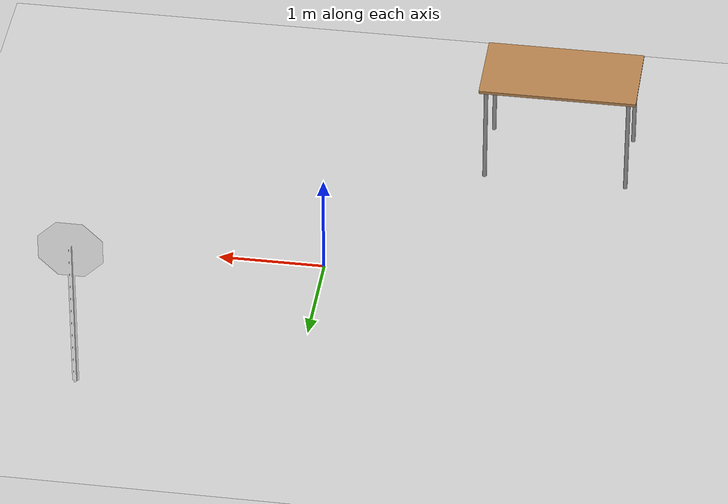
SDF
<gazebo version="1.0">
 <world name="default">
  <include><uri>model://ground_plane</uri></include>
  <include><uri>model://stop_sign</uri><pose>2 2 0 0 0 0</pose></include>
  <include><uri>model://table</uri><pose>-2 -2 0 0 0 0</pose></include>
 </world>
</gazebo>

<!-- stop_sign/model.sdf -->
<sdf version="1.5">
  <model name="Stop Sign">
    <link name="link">
      <collision name="collision">
        <geometry>
          <mesh>
            <uri>model://stop_sign/meshes/stop_sign.dae</uri>
          </mesh>
        </geometry>
      </collision>
      <visual name="visual">
        <geometry>
          <mesh>
            <uri>model://stop_sign/meshes/stop_sign.dae</uri>
          </mesh>
        </geometry>
        <material>
          <script>
            <uri>model://stop_sign/materials/scripts</uri>
            <uri>model://stop_sign/materials/textures</uri>
            <name>StopSign/Diffuse</name>
          </script>
        </material>
      </visual>
    </link>
  </model>
</sdf>

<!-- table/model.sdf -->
<sdf version="1.5">
  <model name="table">
    <static>true</static>
    <link name="link">
      <collision name="surface">
        <pose>0 0 1.0 0 0 0</pose>
        <geometry>
          <box>
            <size>1.5 0.8 0.03</size>
          </box>
        </geometry>
        <surface>
          <friction>
            <ode>
              <mu>0.6</mu>
              <mu2>0.6</mu2>
            </ode>
          </friction>
        </surface>
      </collision>
      <visual name="visual1">
        <pose>0 0 1.0 0 0 0</pose>
        <geometry>
          <box>
            <size>1.5 0.8 0.03</size>
          </box>
        </geometry>
        <material>
          <script>
            <uri>model://media/materials/scripts/gazebo.material</uri>
            <name>Gazebo/Wood</name>
          </script>
        </material>
      </visual>
      <collision name="front_left_leg">
        <pose>0.68 0.38 0.5 0 0 0</pose>
        <geometry>
          <cylinder>
            <radius>0.02</radius>
            <length>1.0</length>
          </cylinder>
        </geometry>
      </collision>
      <visual name="front_left_leg">
        <pose>0.68 0.38 0.5 0 0 0</pose>
        <geometry>
          <cylinder>
            <radius>0.02</radius>
            <length>1.0</length>
          </cylinder>
        </geometry>
        <material>
          <script>
            <uri>model://media/materials/scripts/gazebo.material</uri>
            <name>Gazebo/Grey</name>
          </script>
        </material>
      </visual>
      <collision name="front_right_leg">
        <pose>0.68 -0.38 0.5 0 0 0</pose>
        <geometry>
          <cylinder>
            <radius>0.02</radius>
            <length>1.0</length>
          </cylinder>
        </geometry>
      </collision>
      <visual name="front_right_leg">
        <pose>0.68 -0.38 0.5 0 0 0</pose>
        <geometry>
          <cylinder>
            <radius>0.02</radius>
            <length>1.0</length>
          </cylinder>
        </geometry>
        <material>
          <script>
            <uri>model://media/materials/scripts/gazebo.material</uri>
            <name>Gazebo/Grey</name>
          </script>
        </material>
      </visual>
      <collision name="back_right_leg">
        <pose>-0.68 -0.38 0.5 0 0 0</pose>
        <geometry>
          <cylinder>
            <radius>0.02</radius>
            <length>1.0</length>
          </cylinder>
        </geometry>
      </collision>
      <visual name="back_right_leg">
        <pose>-0.68 -0.38 0.5 0 0 0</pose>
        <geometry>
          <cylinder>
            <radius>0.02</radius>
            <length>1.0</length>
          </cylinder>
        </geometry>
        <material>
          <script>
            <uri>model://media/materials/scripts/gazebo.material</uri>
            <name>Gazebo/Grey</name>
          </script>
        </material>
      </visual>
      <collision name="back_left_leg">
        <pose>-0.68 0.38 0.5 0 0 0</pose>
        <geometry>
          <cylinder>
            <radius>0.02</radius>
            <length>1.0</length>
          </cylinder>
        </geometry>
      </collision>
      <visual name="back_left_leg">
        <pose>-0.68 0.38 0.5 0 0 0</pose>
        <geometry>
          <cylinder>
            <radius>0.02</radius>
            <length>1.0</length>
          </cylinder>
        </geometry>
        <material>
          <script>
            <uri>model://media/materials/scripts/gazebo.material</uri>
            <name>Gazebo/Grey</name>
          </script>
        </material>
      </visual>
    </link>
  </model>
</sdf>
